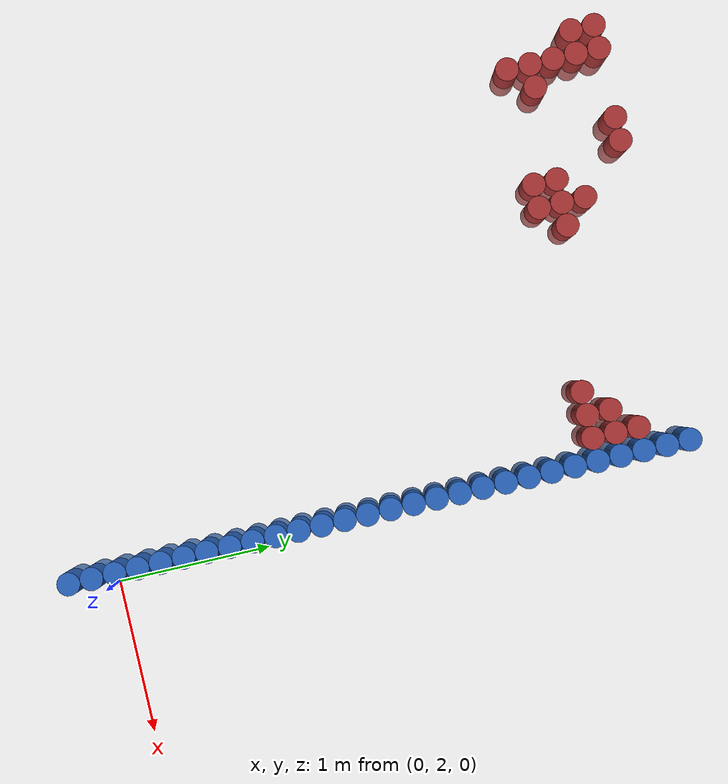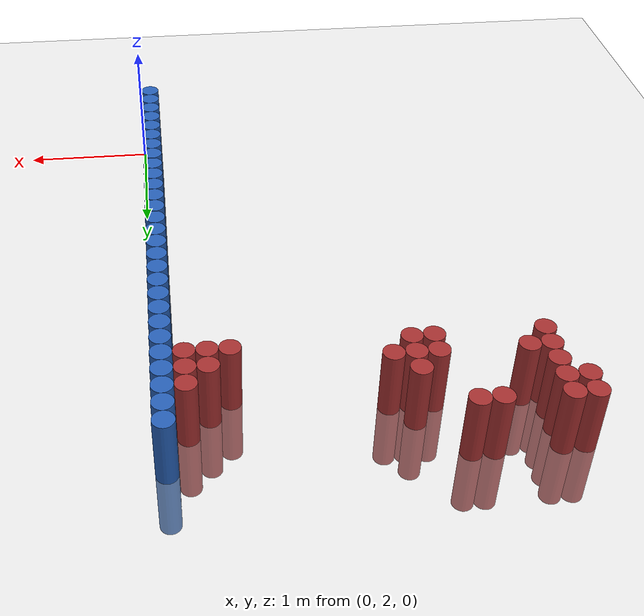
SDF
<sdf version="1.6">
 <world name="default">
  <model name="ground_plane">
   <static>1</static>
   <link name="link">
    <collision name="collision">
     <geometry><plane><normal>0 0 1</normal><size>100 100</size></plane></geometry>
     <surface><friction><ode><mu>100</mu><mu2>50</mu2></ode></friction></surface>
    </collision>
    <visual name="visual">
     <cast_shadows>0</cast_shadows>
     <geometry><plane><normal>0 0 1</normal><size>100 100</size></plane></geometry>
     <material>
      <script><uri>file://media/materials/scripts/gazebo.material</uri><name>Gazebo/Grey</name></script>
     </material>
    </visual>
   </link>
  </model>
  <model name="unit_cylinder_50">
   <static>1</static>
   <pose>-0.075000 1.725000 0.000000 0.000000 0.000000 0.000000</pose>
   <link name="link">
    <inertial>
     <mass>1</mass>
     <inertia><ixx>0.145833</ixx><ixy>0</ixy><ixz>0</ixz><iyy>0.145833</iyy><iyz>0</iyz><izz>0.125</izz></inertia>
    </inertial>
    <collision name="collision">
     <geometry><cylinder><radius>0.075000</radius><length>1</length></cylinder></geometry>
    </collision>
    <visual name="visual">
     <geometry><cylinder><radius>0.075000</radius><length>1</length></cylinder></geometry>
     <material>
      <ambient>0.152000 0.379000 0.720000 1</ambient>
      <diffuse>0.152000 0.379000 0.720000 1</diffuse>
     </material>
     <material>
      <script><name>Gazebo/Grey</name><uri>file://media/materials/scripts/gazebo.material</uri></script>
     </material>
    </visual>
   </link>
  </model>
  <model name="unit_cylinder_52">
   <static>1</static>
   <pose>-0.075000 1.875000 0.000000 0.000000 0.000000 0.000000</pose>
   <link name="link">
    <inertial>
     <mass>1</mass>
     <inertia><ixx>0.145833</ixx><ixy>0</ixy><ixz>0</ixz><iyy>0.145833</iyy><iyz>0</iyz><izz>0.125</izz></inertia>
    </inertial>
    <collision name="collision">
     <geometry><cylinder><radius>0.075000</radius><length>1</length></cylinder></geometry>
    </collision>
    <visual name="visual">
     <geometry><cylinder><radius>0.075000</radius><length>1</length></cylinder></geometry>
     <material>
      <ambient>0.152000 0.379000 0.720000 1</ambient>
      <diffuse>0.152000 0.379000 0.720000 1</diffuse>
     </material>
     <material>
      <script><name>Gazebo/Grey</name><uri>file://media/materials/scripts/gazebo.material</uri></script>
     </material>
    </visual>
   </link>
  </model>
  <model name="unit_cylinder_54">
   <static>1</static>
   <pose>-0.075000 2.025000 0.000000 0.000000 0.000000 0.000000</pose>
   <link name="link">
    <inertial>
     <mass>1</mass>
     <inertia><ixx>0.145833</ixx><ixy>0</ixy><ixz>0</ixz><iyy>0.145833</iyy><iyz>0</iyz><izz>0.125</izz></inertia>
    </inertial>
    <collision name="collision">
     <geometry><cylinder><radius>0.075000</radius><length>1</length></cylinder></geometry>
    </collision>
    <visual name="visual">
     <geometry><cylinder><radius>0.075000</radius><length>1</length></cylinder></geometry>
     <material>
      <ambient>0.152000 0.379000 0.720000 1</ambient>
      <diffuse>0.152000 0.379000 0.720000 1</diffuse>
     </material>
     <material>
      <script><name>Gazebo/Grey</name><uri>file://media/materials/scripts/gazebo.material</uri></script>
     </material>
    </visual>
   </link>
  </model>
  <model name="unit_cylinder_56">
   <static>1</static>
   <pose>-0.075000 2.175000 0.000000 0.000000 0.000000 0.000000</pose>
   <link name="link">
    <inertial>
     <mass>1</mass>
     <inertia><ixx>0.145833</ixx><ixy>0</ixy><ixz>0</ixz><iyy>0.145833</iyy><iyz>0</iyz><izz>0.125</izz></inertia>
    </inertial>
    <collision name="collision">
     <geometry><cylinder><radius>0.075000</radius><length>1</length></cylinder></geometry>
    </collision>
    <visual name="visual">
     <geometry><cylinder><radius>0.075000</radius><length>1</length></cylinder></geometry>
     <material>
      <ambient>0.152000 0.379000 0.720000 1</ambient>
      <diffuse>0.152000 0.379000 0.720000 1</diffuse>
     </material>
     <material>
      <script><name>Gazebo/Grey</name><uri>file://media/materials/scripts/gazebo.material</uri></script>
     </material>
    </visual>
   </link>
  </model>
  <model name="unit_cylinder_58">
   <static>1</static>
   <pose>-0.075000 2.325000 0.000000 0.000000 0.000000 0.000000</pose>
   <link name="link">
    <inertial>
     <mass>1</mass>
     <inertia><ixx>0.145833</ixx><ixy>0</ixy><ixz>0</ixz><iyy>0.145833</iyy><iyz>0</iyz><izz>0.125</izz></inertia>
    </inertial>
    <collision name="collision">
     <geometry><cylinder><radius>0.075000</radius><length>1</length></cylinder></geometry>
    </collision>
    <visual name="visual">
     <geometry><cylinder><radius>0.075000</radius><length>1</length></cylinder></geometry>
     <material>
      <ambient>0.152000 0.379000 0.720000 1</ambient>
      <diffuse>0.152000 0.379000 0.720000 1</diffuse>
     </material>
     <material>
      <script><name>Gazebo/Grey</name><uri>file://media/materials/scripts/gazebo.material</uri></script>
     </material>
    </visual>
   </link>
  </model>
  <model name="unit_cylinder_60">
   <static>1</static>
   <pose>-0.075000 2.475000 0.000000 0.000000 0.000000 0.000000</pose>
   <link name="link">
    <inertial>
     <mass>1</mass>
     <inertia><ixx>0.145833</ixx><ixy>0</ixy><ixz>0</ixz><iyy>0.145833</iyy><iyz>0</iyz><izz>0.125</izz></inertia>
    </inertial>
    <collision name="collision">
     <geometry><cylinder><radius>0.075000</radius><length>1</length></cylinder></geometry>
    </collision>
    <visual name="visual">
     <geometry><cylinder><radius>0.075000</radius><length>1</length></cylinder></geometry>
     <material>
      <ambient>0.152000 0.379000 0.720000 1</ambient>
      <diffuse>0.152000 0.379000 0.720000 1</diffuse>
     </material>
     <material>
      <script><name>Gazebo/Grey</name><uri>file://media/materials/scripts/gazebo.material</uri></script>
     </material>
    </visual>
   </link>
  </model>
  <model name="unit_cylinder_62">
   <static>1</static>
   <pose>-0.075000 2.625000 0.000000 0.000000 0.000000 0.000000</pose>
   <link name="link">
    <inertial>
     <mass>1</mass>
     <inertia><ixx>0.145833</ixx><ixy>0</ixy><ixz>0</ixz><iyy>0.145833</iyy><iyz>0</iyz><izz>0.125</izz></inertia>
    </inertial>
    <collision name="collision">
     <geometry><cylinder><radius>0.075000</radius><length>1</length></cylinder></geometry>
    </collision>
    <visual name="visual">
     <geometry><cylinder><radius>0.075000</radius><length>1</length></cylinder></geometry>
     <material>
      <ambient>0.152000 0.379000 0.720000 1</ambient>
      <diffuse>0.152000 0.379000 0.720000 1</diffuse>
     </material>
     <material>
      <script><name>Gazebo/Grey</name><uri>file://media/materials/scripts/gazebo.material</uri></script>
     </material>
    </visual>
   </link>
  </model>
  <model name="unit_cylinder_64">
   <static>1</static>
   <pose>-0.075000 2.775000 0.000000 0.000000 0.000000 0.000000</pose>
   <link name="link">
    <inertial>
     <mass>1</mass>
     <inertia><ixx>0.145833</ixx><ixy>0</ixy><ixz>0</ixz><iyy>0.145833</iyy><iyz>0</iyz><izz>0.125</izz></inertia>
    </inertial>
    <collision name="collision">
     <geometry><cylinder><radius>0.075000</radius><length>1</length></cylinder></geometry>
    </collision>
    <visual name="visual">
     <geometry><cylinder><radius>0.075000</radius><length>1</length></cylinder></geometry>
     <material>
      <ambient>0.152000 0.379000 0.720000 1</ambient>
      <diffuse>0.152000 0.379000 0.720000 1</diffuse>
     </material>
     <material>
      <script><name>Gazebo/Grey</name><uri>file://media/materials/scripts/gazebo.material</uri></script>
     </material>
    </visual>
   </link>
  </model>
  <model name="unit_cylinder_66">
   <static>1</static>
   <pose>-0.075000 2.925000 0.000000 0.000000 0.000000 0.000000</pose>
   <link name="link">
    <inertial>
     <mass>1</mass>
     <inertia><ixx>0.145833</ixx><ixy>0</ixy><ixz>0</ixz><iyy>0.145833</iyy><iyz>0</iyz><izz>0.125</izz></inertia>
    </inertial>
    <collision name="collision">
     <geometry><cylinder><radius>0.075000</radius><length>1</length></cylinder></geometry>
    </collision>
    <visual name="visual">
     <geometry><cylinder><radius>0.075000</radius><length>1</length></cylinder></geometry>
     <material>
      <ambient>0.152000 0.379000 0.720000 1</ambient>
      <diffuse>0.152000 0.379000 0.720000 1</diffuse>
     </material>
     <material>
      <script><name>Gazebo/Grey</name><uri>file://media/materials/scripts/gazebo.material</uri></script>
     </material>
    </visual>
   </link>
  </model>
  <model name="unit_cylinder_68">
   <static>1</static>
   <pose>-0.075000 3.075000 0.000000 0.000000 0.000000 0.000000</pose>
   <link name="link">
    <inertial>
     <mass>1</mass>
     <inertia><ixx>0.145833</ixx><ixy>0</ixy><ixz>0</ixz><iyy>0.145833</iyy><iyz>0</iyz><izz>0.125</izz></inertia>
    </inertial>
    <collision name="collision">
     <geometry><cylinder><radius>0.075000</radius><length>1</length></cylinder></geometry>
    </collision>
    <visual name="visual">
     <geometry><cylinder><radius>0.075000</radius><length>1</length></cylinder></geometry>
     <material>
      <ambient>0.152000 0.379000 0.720000 1</ambient>
      <diffuse>0.152000 0.379000 0.720000 1</diffuse>
     </material>
     <material>
      <script><name>Gazebo/Grey</name><uri>file://media/materials/scripts/gazebo.material</uri></script>
     </material>
    </visual>
   </link>
  </model>
  <model name="unit_cylinder_70">
   <static>1</static>
   <pose>-0.075000 3.225000 0.000000 0.000000 0.000000 0.000000</pose>
   <link name="link">
    <inertial>
     <mass>1</mass>
     <inertia><ixx>0.145833</ixx><ixy>0</ixy><ixz>0</ixz><iyy>0.145833</iyy><iyz>0</iyz><izz>0.125</izz></inertia>
    </inertial>
    <collision name="collision">
     <geometry><cylinder><radius>0.075000</radius><length>1</length></cylinder></geometry>
    </collision>
    <visual name="visual">
     <geometry><cylinder><radius>0.075000</radius><length>1</length></cylinder></geometry>
     <material>
      <ambient>0.152000 0.379000 0.720000 1</ambient>
      <diffuse>0.152000 0.379000 0.720000 1</diffuse>
     </material>
     <material>
      <script><name>Gazebo/Grey</name><uri>file://media/materials/scripts/gazebo.material</uri></script>
     </material>
    </visual>
   </link>
  </model>
  <model name="unit_cylinder_72">
   <static>1</static>
   <pose>-0.075000 3.375000 0.000000 0.000000 0.000000 0.000000</pose>
   <link name="link">
    <inertial>
     <mass>1</mass>
     <inertia><ixx>0.145833</ixx><ixy>0</ixy><ixz>0</ixz><iyy>0.145833</iyy><iyz>0</iyz><izz>0.125</izz></inertia>
    </inertial>
    <collision name="collision">
     <geometry><cylinder><radius>0.075000</radius><length>1</length></cylinder></geometry>
    </collision>
    <visual name="visual">
     <geometry><cylinder><radius>0.075000</radius><length>1</length></cylinder></geometry>
     <material>
      <ambient>0.152000 0.379000 0.720000 1</ambient>
      <diffuse>0.152000 0.379000 0.720000 1</diffuse>
     </material>
     <material>
      <script><name>Gazebo/Grey</name><uri>file://media/materials/scripts/gazebo.material</uri></script>
     </material>
    </visual>
   </link>
  </model>
  <model name="unit_cylinder_74">
   <static>1</static>
   <pose>-0.075000 3.525000 0.000000 0.000000 0.000000 0.000000</pose>
   <link name="link">
    <inertial>
     <mass>1</mass>
     <inertia><ixx>0.145833</ixx><ixy>0</ixy><ixz>0</ixz><iyy>0.145833</iyy><iyz>0</iyz><izz>0.125</izz></inertia>
    </inertial>
    <collision name="collision">
     <geometry><cylinder><radius>0.075000</radius><length>1</length></cylinder></geometry>
    </collision>
    <visual name="visual">
     <geometry><cylinder><radius>0.075000</radius><length>1</length></cylinder></geometry>
     <material>
      <ambient>0.152000 0.379000 0.720000 1</ambient>
      <diffuse>0.152000 0.379000 0.720000 1</diffuse>
     </material>
     <material>
      <script><name>Gazebo/Grey</name><uri>file://media/materials/scripts/gazebo.material</uri></script>
     </material>
    </visual>
   </link>
  </model>
  <model name="unit_cylinder_76">
   <static>1</static>
   <pose>-0.075000 3.675000 0.000000 0.000000 0.000000 0.000000</pose>
   <link name="link">
    <inertial>
     <mass>1</mass>
     <inertia><ixx>0.145833</ixx><ixy>0</ixy><ixz>0</ixz><iyy>0.145833</iyy><iyz>0</iyz><izz>0.125</izz></inertia>
    </inertial>
    <collision name="collision">
     <geometry><cylinder><radius>0.075000</radius><length>1</length></cylinder></geometry>
    </collision>
    <visual name="visual">
     <geometry><cylinder><radius>0.075000</radius><length>1</length></cylinder></geometry>
     <material>
      <ambient>0.152000 0.379000 0.720000 1</ambient>
      <diffuse>0.152000 0.379000 0.720000 1</diffuse>
     </material>
     <material>
      <script><name>Gazebo/Grey</name><uri>file://media/materials/scripts/gazebo.material</uri></script>
     </material>
    </visual>
   </link>
  </model>
  <model name="unit_cylinder_78">
   <static>1</static>
   <pose>-0.075000 3.825000 0.000000 0.000000 0.000000 0.000000</pose>
   <link name="link">
    <inertial>
     <mass>1</mass>
     <inertia><ixx>0.145833</ixx><ixy>0</ixy><ixz>0</ixz><iyy>0.145833</iyy><iyz>0</iyz><izz>0.125</izz></inertia>
    </inertial>
    <collision name="collision">
     <geometry><cylinder><radius>0.075000</radius><length>1</length></cylinder></geometry>
    </collision>
    <visual name="visual">
     <geometry><cylinder><radius>0.075000</radius><length>1</length></cylinder></geometry>
     <material>
      <ambient>0.152000 0.379000 0.720000 1</ambient>
      <diffuse>0.152000 0.379000 0.720000 1</diffuse>
     </material>
     <material>
      <script><name>Gazebo/Grey</name><uri>file://media/materials/scripts/gazebo.material</uri></script>
     </material>
    </visual>
   </link>
  </model>
  <model name="unit_cylinder_80">
   <static>1</static>
   <pose>-0.075000 3.975000 0.000000 0.000000 0.000000 0.000000</pose>
   <link name="link">
    <inertial>
     <mass>1</mass>
     <inertia><ixx>0.145833</ixx><ixy>0</ixy><ixz>0</ixz><iyy>0.145833</iyy><iyz>0</iyz><izz>0.125</izz></inertia>
    </inertial>
    <collision name="collision">
     <geometry><cylinder><radius>0.075000</radius><length>1</length></cylinder></geometry>
    </collision>
    <visual name="visual">
     <geometry><cylinder><radius>0.075000</radius><length>1</length></cylinder></geometry>
     <material>
      <ambient>0.152000 0.379000 0.720000 1</ambient>
      <diffuse>0.152000 0.379000 0.720000 1</diffuse>
     </material>
     <material>
      <script><name>Gazebo/Grey</name><uri>file://media/materials/scripts/gazebo.material</uri></script>
     </material>
    </visual>
   </link>
  </model>
  <model name="unit_cylinder_82">
   <static>1</static>
   <pose>-0.075000 4.125000 0.000000 0.000000 0.000000 0.000000</pose>
   <link name="link">
    <inertial>
     <mass>1</mass>
     <inertia><ixx>0.145833</ixx><ixy>0</ixy><ixz>0</ixz><iyy>0.145833</iyy><iyz>0</iyz><izz>0.125</izz></inertia>
    </inertial>
    <collision name="collision">
     <geometry><cylinder><radius>0.075000</radius><length>1</length></cylinder></geometry>
    </collision>
    <visual name="visual">
     <geometry><cylinder><radius>0.075000</radius><length>1</length></cylinder></geometry>
     <material>
      <ambient>0.152000 0.379000 0.720000 1</ambient>
      <diffuse>0.152000 0.379000 0.720000 1</diffuse>
     </material>
     <material>
      <script><name>Gazebo/Grey</name><uri>file://media/materials/scripts/gazebo.material</uri></script>
     </material>
    </visual>
   </link>
  </model>
  <model name="unit_cylinder_84">
   <static>1</static>
   <pose>-0.075000 4.275000 0.000000 0.000000 0.000000 0.000000</pose>
   <link name="link">
    <inertial>
     <mass>1</mass>
     <inertia><ixx>0.145833</ixx><ixy>0</ixy><ixz>0</ixz><iyy>0.145833</iyy><iyz>0</iyz><izz>0.125</izz></inertia>
    </inertial>
    <collision name="collision">
     <geometry><cylinder><radius>0.075000</radius><length>1</length></cylinder></geometry>
    </collision>
    <visual name="visual">
     <geometry><cylinder><radius>0.075000</radius><length>1</length></cylinder></geometry>
     <material>
      <ambient>0.152000 0.379000 0.720000 1</ambient>
      <diffuse>0.152000 0.379000 0.720000 1</diffuse>
     </material>
     <material>
      <script><name>Gazebo/Grey</name><uri>file://media/materials/scripts/gazebo.material</uri></script>
     </material>
    </visual>
   </link>
  </model>
  <model name="unit_cylinder_86">
   <static>1</static>
   <pose>-0.075000 4.425000 0.000000 0.000000 0.000000 0.000000</pose>
   <link name="link">
    <inertial>
     <mass>1</mass>
     <inertia><ixx>0.145833</ixx><ixy>0</ixy><ixz>0</ixz><iyy>0.145833</iyy><iyz>0</iyz><izz>0.125</izz></inertia>
    </inertial>
    <collision name="collision">
     <geometry><cylinder><radius>0.075000</radius><length>1</length></cylinder></geometry>
    </collision>
    <visual name="visual">
     <geometry><cylinder><radius>0.075000</radius><length>1</length></cylinder></geometry>
     <material>
      <ambient>0.152000 0.379000 0.720000 1</ambient>
      <diffuse>0.152000 0.379000 0.720000 1</diffuse>
     </material>
     <material>
      <script><name>Gazebo/Grey</name><uri>file://media/materials/scripts/gazebo.material</uri></script>
     </material>
    </visual>
   </link>
  </model>
  <model name="unit_cylinder_88">
   <static>1</static>
   <pose>-0.075000 4.575000 0.000000 0.000000 0.000000 0.000000</pose>
   <link name="link">
    <inertial>
     <mass>1</mass>
     <inertia><ixx>0.145833</ixx><ixy>0</ixy><ixz>0</ixz><iyy>0.145833</iyy><iyz>0</iyz><izz>0.125</izz></inertia>
    </inertial>
    <collision name="collision">
     <geometry><cylinder><radius>0.075000</radius><length>1</length></cylinder></geometry>
    </collision>
    <visual name="visual">
     <geometry><cylinder><radius>0.075000</radius><length>1</length></cylinder></geometry>
     <material>
      <ambient>0.152000 0.379000 0.720000 1</ambient>
      <diffuse>0.152000 0.379000 0.720000 1</diffuse>
     </material>
     <material>
      <script><name>Gazebo/Grey</name><uri>file://media/materials/scripts/gazebo.material</uri></script>
     </material>
    </visual>
   </link>
  </model>
  <model name="unit_cylinder_90">
   <static>1</static>
   <pose>-0.075000 4.725000 0.000000 0.000000 0.000000 0.000000</pose>
   <link name="link">
    <inertial>
     <mass>1</mass>
     <inertia><ixx>0.145833</ixx><ixy>0</ixy><ixz>0</ixz><iyy>0.145833</iyy><iyz>0</iyz><izz>0.125</izz></inertia>
    </inertial>
    <collision name="collision">
     <geometry><cylinder><radius>0.075000</radius><length>1</length></cylinder></geometry>
    </collision>
    <visual name="visual">
     <geometry><cylinder><radius>0.075000</radius><length>1</length></cylinder></geometry>
     <material>
      <ambient>0.152000 0.379000 0.720000 1</ambient>
      <diffuse>0.152000 0.379000 0.720000 1</diffuse>
     </material>
     <material>
      <script><name>Gazebo/Grey</name><uri>file://media/materials/scripts/gazebo.material</uri></script>
     </material>
    </visual>
   </link>
  </model>
  <model name="unit_cylinder_92">
   <static>1</static>
   <pose>-0.075000 4.875000 0.000000 0.000000 0.000000 0.000000</pose>
   <link name="link">
    <inertial>
     <mass>1</mass>
     <inertia><ixx>0.145833</ixx><ixy>0</ixy><ixz>0</ixz><iyy>0.145833</iyy><iyz>0</iyz><izz>0.125</izz></inertia>
    </inertial>
    <collision name="collision">
     <geometry><cylinder><radius>0.075000</radius><length>1</length></cylinder></geometry>
    </collision>
    <visual name="visual">
     <geometry><cylinder><radius>0.075000</radius><length>1</length></cylinder></geometry>
     <material>
      <ambient>0.152000 0.379000 0.720000 1</ambient>
      <diffuse>0.152000 0.379000 0.720000 1</diffuse>
     </material>
     <material>
      <script><name>Gazebo/Grey</name><uri>file://media/materials/scripts/gazebo.material</uri></script>
     </material>
    </visual>
   </link>
  </model>
  <model name="unit_cylinder_94">
   <static>1</static>
   <pose>-0.075000 5.025000 0.000000 0.000000 0.000000 0.000000</pose>
   <link name="link">
    <inertial>
     <mass>1</mass>
     <inertia><ixx>0.145833</ixx><ixy>0</ixy><ixz>0</ixz><iyy>0.145833</iyy><iyz>0</iyz><izz>0.125</izz></inertia>
    </inertial>
    <collision name="collision">
     <geometry><cylinder><radius>0.075000</radius><length>1</length></cylinder></geometry>
    </collision>
    <visual name="visual">
     <geometry><cylinder><radius>0.075000</radius><length>1</length></cylinder></geometry>
     <material>
      <ambient>0.152000 0.379000 0.720000 1</ambient>
      <diffuse>0.152000 0.379000 0.720000 1</diffuse>
     </material>
     <material>
      <script><name>Gazebo/Grey</name><uri>file://media/materials/scripts/gazebo.material</uri></script>
     </material>
    </visual>
   </link>
  </model>
  <model name="unit_cylinder_211">
   <static>1</static>
   <pose>-2.775000 5.625000 0.000000 0.000000 0.000000 0.000000</pose>
   <link name="link">
    <inertial>
     <mass>1</mass>
     <inertia><ixx>0.145833</ixx><ixy>0</ixy><ixz>0</ixz><iyy>0.145833</iyy><iyz>0</iyz><izz>0.125</izz></inertia>
    </inertial>
    <collision name="collision">
     <geometry><cylinder><radius>0.075000</radius><length>1</length></cylinder></geometry>
    </collision>
    <visual name="visual">
     <geometry><cylinder><radius>0.075000</radius><length>1</length></cylinder></geometry>
     <material>
      <ambient>0.648000 0.192000 0.192000 1</ambient>
      <diffuse>0.648000 0.192000 0.192000 1</diffuse>
     </material>
     <material>
      <script><name>Gazebo/Grey</name><uri>file://media/materials/scripts/gazebo.material</uri></script>
     </material>
    </visual>
   </link>
  </model>
  <model name="unit_cylinder_212">
   <static>1</static>
   <pose>-2.775000 5.775000 0.000000 0.000000 0.000000 0.000000</pose>
   <link name="link">
    <inertial>
     <mass>1</mass>
     <inertia><ixx>0.145833</ixx><ixy>0</ixy><ixz>0</ixz><iyy>0.145833</iyy><iyz>0</iyz><izz>0.125</izz></inertia>
    </inertial>
    <collision name="collision">
     <geometry><cylinder><radius>0.075000</radius><length>1</length></cylinder></geometry>
    </collision>
    <visual name="visual">
     <geometry><cylinder><radius>0.075000</radius><length>1</length></cylinder></geometry>
     <material>
      <ambient>0.648000 0.192000 0.192000 1</ambient>
      <diffuse>0.648000 0.192000 0.192000 1</diffuse>
     </material>
     <material>
      <script><name>Gazebo/Grey</name><uri>file://media/materials/scripts/gazebo.material</uri></script>
     </material>
    </visual>
   </link>
  </model>
  <model name="unit_cylinder_219">
   <static>1</static>
   <pose>-2.625000 5.175000 0.000000 0.000000 0.000000 0.000000</pose>
   <link name="link">
    <inertial>
     <mass>1</mass>
     <inertia><ixx>0.145833</ixx><ixy>0</ixy><ixz>0</ixz><iyy>0.145833</iyy><iyz>0</iyz><izz>0.125</izz></inertia>
    </inertial>
    <collision name="collision">
     <geometry><cylinder><radius>0.075000</radius><length>1</length></cylinder></geometry>
    </collision>
    <visual name="visual">
     <geometry><cylinder><radius>0.075000</radius><length>1</length></cylinder></geometry>
     <material>
      <ambient>0.648000 0.192000 0.192000 1</ambient>
      <diffuse>0.648000 0.192000 0.192000 1</diffuse>
     </material>
     <material>
      <script><name>Gazebo/Grey</name><uri>file://media/materials/scripts/gazebo.material</uri></script>
     </material>
    </visual>
   </link>
  </model>
  <model name="unit_cylinder_220">
   <static>1</static>
   <pose>-2.625000 5.325000 0.000000 0.000000 0.000000 0.000000</pose>
   <link name="link">
    <inertial>
     <mass>1</mass>
     <inertia><ixx>0.145833</ixx><ixy>0</ixy><ixz>0</ixz><iyy>0.145833</iyy><iyz>0</iyz><izz>0.125</izz></inertia>
    </inertial>
    <collision name="collision">
     <geometry><cylinder><radius>0.075000</radius><length>1</length></cylinder></geometry>
    </collision>
    <visual name="visual">
     <geometry><cylinder><radius>0.075000</radius><length>1</length></cylinder></geometry>
     <material>
      <ambient>0.648000 0.192000 0.192000 1</ambient>
      <diffuse>0.648000 0.192000 0.192000 1</diffuse>
     </material>
     <material>
      <script><name>Gazebo/Grey</name><uri>file://media/materials/scripts/gazebo.material</uri></script>
     </material>
    </visual>
   </link>
  </model>
  <model name="unit_cylinder_221">
   <static>1</static>
   <pose>-2.625000 5.475000 0.000000 0.000000 0.000000 0.000000</pose>
   <link name="link">
    <inertial>
     <mass>1</mass>
     <inertia><ixx>0.145833</ixx><ixy>0</ixy><ixz>0</ixz><iyy>0.145833</iyy><iyz>0</iyz><izz>0.125</izz></inertia>
    </inertial>
    <collision name="collision">
     <geometry><cylinder><radius>0.075000</radius><length>1</length></cylinder></geometry>
    </collision>
    <visual name="visual">
     <geometry><cylinder><radius>0.075000</radius><length>1</length></cylinder></geometry>
     <material>
      <ambient>0.648000 0.192000 0.192000 1</ambient>
      <diffuse>0.648000 0.192000 0.192000 1</diffuse>
     </material>
     <material>
      <script><name>Gazebo/Grey</name><uri>file://media/materials/scripts/gazebo.material</uri></script>
     </material>
    </visual>
   </link>
  </model>
  <model name="unit_cylinder_222">
   <static>1</static>
   <pose>-2.625000 5.625000 0.000000 0.000000 0.000000 0.000000</pose>
   <link name="link">
    <inertial>
     <mass>1</mass>
     <inertia><ixx>0.145833</ixx><ixy>0</ixy><ixz>0</ixz><iyy>0.145833</iyy><iyz>0</iyz><izz>0.125</izz></inertia>
    </inertial>
    <collision name="collision">
     <geometry><cylinder><radius>0.075000</radius><length>1</length></cylinder></geometry>
    </collision>
    <visual name="visual">
     <geometry><cylinder><radius>0.075000</radius><length>1</length></cylinder></geometry>
     <material>
      <ambient>0.648000 0.192000 0.192000 1</ambient>
      <diffuse>0.648000 0.192000 0.192000 1</diffuse>
     </material>
     <material>
      <script><name>Gazebo/Grey</name><uri>file://media/materials/scripts/gazebo.material</uri></script>
     </material>
    </visual>
   </link>
  </model>
  <model name="unit_cylinder_223">
   <static>1</static>
   <pose>-2.625000 5.775000 0.000000 0.000000 0.000000 0.000000</pose>
   <link name="link">
    <inertial>
     <mass>1</mass>
     <inertia><ixx>0.145833</ixx><ixy>0</ixy><ixz>0</ixz><iyy>0.145833</iyy><iyz>0</iyz><izz>0.125</izz></inertia>
    </inertial>
    <collision name="collision">
     <geometry><cylinder><radius>0.075000</radius><length>1</length></cylinder></geometry>
    </collision>
    <visual name="visual">
     <geometry><cylinder><radius>0.075000</radius><length>1</length></cylinder></geometry>
     <material>
      <ambient>0.648000 0.192000 0.192000 1</ambient>
      <diffuse>0.648000 0.192000 0.192000 1</diffuse>
     </material>
     <material>
      <script><name>Gazebo/Grey</name><uri>file://media/materials/scripts/gazebo.material</uri></script>
     </material>
    </visual>
   </link>
  </model>
  <model name="unit_cylinder_229">
   <static>1</static>
   <pose>-2.475000 5.325000 0.000000 0.000000 0.000000 0.000000</pose>
   <link name="link">
    <inertial>
     <mass>1</mass>
     <inertia><ixx>0.145833</ixx><ixy>0</ixy><ixz>0</ixz><iyy>0.145833</iyy><iyz>0</iyz><izz>0.125</izz></inertia>
    </inertial>
    <collision name="collision">
     <geometry><cylinder><radius>0.075000</radius><length>1</length></cylinder></geometry>
    </collision>
    <visual name="visual">
     <geometry><cylinder><radius>0.075000</radius><length>1</length></cylinder></geometry>
     <material>
      <ambient>0.648000 0.192000 0.192000 1</ambient>
      <diffuse>0.648000 0.192000 0.192000 1</diffuse>
     </material>
     <material>
      <script><name>Gazebo/Grey</name><uri>file://media/materials/scripts/gazebo.material</uri></script>
     </material>
    </visual>
   </link>
  </model>
  <model name="unit_cylinder_244">
   <static>1</static>
   <pose>-2.175000 5.775000 0.000000 0.000000 0.000000 0.000000</pose>
   <link name="link">
    <inertial>
     <mass>1</mass>
     <inertia><ixx>0.145833</ixx><ixy>0</ixy><ixz>0</ixz><iyy>0.145833</iyy><iyz>0</iyz><izz>0.125</izz></inertia>
    </inertial>
    <collision name="collision">
     <geometry><cylinder><radius>0.075000</radius><length>1</length></cylinder></geometry>
    </collision>
    <visual name="visual">
     <geometry><cylinder><radius>0.075000</radius><length>1</length></cylinder></geometry>
     <material>
      <ambient>0.648000 0.192000 0.192000 1</ambient>
      <diffuse>0.648000 0.192000 0.192000 1</diffuse>
     </material>
     <material>
      <script><name>Gazebo/Grey</name><uri>file://media/materials/scripts/gazebo.material</uri></script>
     </material>
    </visual>
   </link>
  </model>
  <model name="unit_cylinder_252">
   <static>1</static>
   <pose>-2.025000 5.775000 0.000000 0.000000 0.000000 0.000000</pose>
   <link name="link">
    <inertial>
     <mass>1</mass>
     <inertia><ixx>0.145833</ixx><ixy>0</ixy><ixz>0</ixz><iyy>0.145833</iyy><iyz>0</iyz><izz>0.125</izz></inertia>
    </inertial>
    <collision name="collision">
     <geometry><cylinder><radius>0.075000</radius><length>1</length></cylinder></geometry>
    </collision>
    <visual name="visual">
     <geometry><cylinder><radius>0.075000</radius><length>1</length></cylinder></geometry>
     <material>
      <ambient>0.648000 0.192000 0.192000 1</ambient>
      <diffuse>0.648000 0.192000 0.192000 1</diffuse>
     </material>
     <material>
      <script><name>Gazebo/Grey</name><uri>file://media/materials/scripts/gazebo.material</uri></script>
     </material>
    </visual>
   </link>
  </model>
  <model name="unit_cylinder_260">
   <static>1</static>
   <pose>-1.875000 5.175000 0.000000 0.000000 0.000000 0.000000</pose>
   <link name="link">
    <inertial>
     <mass>1</mass>
     <inertia><ixx>0.145833</ixx><ixy>0</ixy><ixz>0</ixz><iyy>0.145833</iyy><iyz>0</iyz><izz>0.125</izz></inertia>
    </inertial>
    <collision name="collision">
     <geometry><cylinder><radius>0.075000</radius><length>1</length></cylinder></geometry>
    </collision>
    <visual name="visual">
     <geometry><cylinder><radius>0.075000</radius><length>1</length></cylinder></geometry>
     <material>
      <ambient>0.648000 0.192000 0.192000 1</ambient>
      <diffuse>0.648000 0.192000 0.192000 1</diffuse>
     </material>
     <material>
      <script><name>Gazebo/Grey</name><uri>file://media/materials/scripts/gazebo.material</uri></script>
     </material>
    </visual>
   </link>
  </model>
  <model name="unit_cylinder_261">
   <static>1</static>
   <pose>-1.875000 5.325000 0.000000 0.000000 0.000000 0.000000</pose>
   <link name="link">
    <inertial>
     <mass>1</mass>
     <inertia><ixx>0.145833</ixx><ixy>0</ixy><ixz>0</ixz><iyy>0.145833</iyy><iyz>0</iyz><izz>0.125</izz></inertia>
    </inertial>
    <collision name="collision">
     <geometry><cylinder><radius>0.075000</radius><length>1</length></cylinder></geometry>
    </collision>
    <visual name="visual">
     <geometry><cylinder><radius>0.075000</radius><length>1</length></cylinder></geometry>
     <material>
      <ambient>0.648000 0.192000 0.192000 1</ambient>
      <diffuse>0.648000 0.192000 0.192000 1</diffuse>
     </material>
     <material>
      <script><name>Gazebo/Grey</name><uri>file://media/materials/scripts/gazebo.material</uri></script>
     </material>
    </visual>
   </link>
  </model>
  <model name="unit_cylinder_269">
   <static>1</static>
   <pose>-1.725000 5.175000 0.000000 0.000000 0.000000 0.000000</pose>
   <link name="link">
    <inertial>
     <mass>1</mass>
     <inertia><ixx>0.145833</ixx><ixy>0</ixy><ixz>0</ixz><iyy>0.145833</iyy><iyz>0</iyz><izz>0.125</izz></inertia>
    </inertial>
    <collision name="collision">
     <geometry><cylinder><radius>0.075000</radius><length>1</length></cylinder></geometry>
    </collision>
    <visual name="visual">
     <geometry><cylinder><radius>0.075000</radius><length>1</length></cylinder></geometry>
     <material>
      <ambient>0.648000 0.192000 0.192000 1</ambient>
      <diffuse>0.648000 0.192000 0.192000 1</diffuse>
     </material>
     <material>
      <script><name>Gazebo/Grey</name><uri>file://media/materials/scripts/gazebo.material</uri></script>
     </material>
    </visual>
   </link>
  </model>
  <model name="unit_cylinder_270">
   <static>1</static>
   <pose>-1.725000 5.325000 0.000000 0.000000 0.000000 0.000000</pose>
   <link name="link">
    <inertial>
     <mass>1</mass>
     <inertia><ixx>0.145833</ixx><ixy>0</ixy><ixz>0</ixz><iyy>0.145833</iyy><iyz>0</iyz><izz>0.125</izz></inertia>
    </inertial>
    <collision name="collision">
     <geometry><cylinder><radius>0.075000</radius><length>1</length></cylinder></geometry>
    </collision>
    <visual name="visual">
     <geometry><cylinder><radius>0.075000</radius><length>1</length></cylinder></geometry>
     <material>
      <ambient>0.648000 0.192000 0.192000 1</ambient>
      <diffuse>0.648000 0.192000 0.192000 1</diffuse>
     </material>
     <material>
      <script><name>Gazebo/Grey</name><uri>file://media/materials/scripts/gazebo.material</uri></script>
     </material>
    </visual>
   </link>
  </model>
  <model name="unit_cylinder_271">
   <static>1</static>
   <pose>-1.725000 5.475000 0.000000 0.000000 0.000000 0.000000</pose>
   <link name="link">
    <inertial>
     <mass>1</mass>
     <inertia><ixx>0.145833</ixx><ixy>0</ixy><ixz>0</ixz><iyy>0.145833</iyy><iyz>0</iyz><izz>0.125</izz></inertia>
    </inertial>
    <collision name="collision">
     <geometry><cylinder><radius>0.075000</radius><length>1</length></cylinder></geometry>
    </collision>
    <visual name="visual">
     <geometry><cylinder><radius>0.075000</radius><length>1</length></cylinder></geometry>
     <material>
      <ambient>0.648000 0.192000 0.192000 1</ambient>
      <diffuse>0.648000 0.192000 0.192000 1</diffuse>
     </material>
     <material>
      <script><name>Gazebo/Grey</name><uri>file://media/materials/scripts/gazebo.material</uri></script>
     </material>
    </visual>
   </link>
  </model>
  <model name="unit_cylinder_276">
   <static>1</static>
   <pose>-1.575000 5.325000 0.000000 0.000000 0.000000 0.000000</pose>
   <link name="link">
    <inertial>
     <mass>1</mass>
     <inertia><ixx>0.145833</ixx><ixy>0</ixy><ixz>0</ixz><iyy>0.145833</iyy><iyz>0</iyz><izz>0.125</izz></inertia>
    </inertial>
    <collision name="collision">
     <geometry><cylinder><radius>0.075000</radius><length>1</length></cylinder></geometry>
    </collision>
    <visual name="visual">
     <geometry><cylinder><radius>0.075000</radius><length>1</length></cylinder></geometry>
     <material>
      <ambient>0.648000 0.192000 0.192000 1</ambient>
      <diffuse>0.648000 0.192000 0.192000 1</diffuse>
     </material>
     <material>
      <script><name>Gazebo/Grey</name><uri>file://media/materials/scripts/gazebo.material</uri></script>
     </material>
    </visual>
   </link>
  </model>
  <model name="unit_cylinder_284">
   <static>1</static>
   <pose>-0.525000 5.175000 0.000000 0.000000 0.000000 0.000000</pose>
   <link name="link">
    <inertial>
     <mass>1</mass>
     <inertia><ixx>0.145833</ixx><ixy>0</ixy><ixz>0</ixz><iyy>0.145833</iyy><iyz>0</iyz><izz>0.125</izz></inertia>
    </inertial>
    <collision name="collision">
     <geometry><cylinder><radius>0.075000</radius><length>1</length></cylinder></geometry>
    </collision>
    <visual name="visual">
     <geometry><cylinder><radius>0.075000</radius><length>1</length></cylinder></geometry>
     <material>
      <ambient>0.648000 0.192000 0.192000 1</ambient>
      <diffuse>0.648000 0.192000 0.192000 1</diffuse>
     </material>
     <material>
      <script><name>Gazebo/Grey</name><uri>file://media/materials/scripts/gazebo.material</uri></script>
     </material>
    </visual>
   </link>
  </model>
  <model name="unit_cylinder_293">
   <static>1</static>
   <pose>-0.375000 5.175000 0.000000 0.000000 0.000000 0.000000</pose>
   <link name="link">
    <inertial>
     <mass>1</mass>
     <inertia><ixx>0.145833</ixx><ixy>0</ixy><ixz>0</ixz><iyy>0.145833</iyy><iyz>0</iyz><izz>0.125</izz></inertia>
    </inertial>
    <collision name="collision">
     <geometry><cylinder><radius>0.075000</radius><length>1</length></cylinder></geometry>
    </collision>
    <visual name="visual">
     <geometry><cylinder><radius>0.075000</radius><length>1</length></cylinder></geometry>
     <material>
      <ambient>0.648000 0.192000 0.192000 1</ambient>
      <diffuse>0.648000 0.192000 0.192000 1</diffuse>
     </material>
     <material>
      <script><name>Gazebo/Grey</name><uri>file://media/materials/scripts/gazebo.material</uri></script>
     </material>
    </visual>
   </link>
  </model>
  <model name="unit_cylinder_294">
   <static>1</static>
   <pose>-0.375000 5.325000 0.000000 0.000000 0.000000 0.000000</pose>
   <link name="link">
    <inertial>
     <mass>1</mass>
     <inertia><ixx>0.145833</ixx><ixy>0</ixy><ixz>0</ixz><iyy>0.145833</iyy><iyz>0</iyz><izz>0.125</izz></inertia>
    </inertial>
    <collision name="collision">
     <geometry><cylinder><radius>0.075000</radius><length>1</length></cylinder></geometry>
    </collision>
    <visual name="visual">
     <geometry><cylinder><radius>0.075000</radius><length>1</length></cylinder></geometry>
     <material>
      <ambient>0.648000 0.192000 0.192000 1</ambient>
      <diffuse>0.648000 0.192000 0.192000 1</diffuse>
     </material>
     <material>
      <script><name>Gazebo/Grey</name><uri>file://media/materials/scripts/gazebo.material</uri></script>
     </material>
    </visual>
   </link>
  </model>
  <model name="unit_cylinder_303">
   <static>1</static>
   <pose>-0.225000 5.175000 0.000000 0.000000 0.000000 0.000000</pose>
   <link name="link">
    <inertial>
     <mass>1</mass>
     <inertia><ixx>0.145833</ixx><ixy>0</ixy><ixz>0</ixz><iyy>0.145833</iyy><iyz>0</iyz><izz>0.125</izz></inertia>
    </inertial>
    <collision name="collision">
     <geometry><cylinder><radius>0.075000</radius><length>1</length></cylinder></geometry>
    </collision>
    <visual name="visual">
     <geometry><cylinder><radius>0.075000</radius><length>1</length></cylinder></geometry>
     <material>
      <ambient>0.648000 0.192000 0.192000 1</ambient>
      <diffuse>0.648000 0.192000 0.192000 1</diffuse>
     </material>
     <material>
      <script><name>Gazebo/Grey</name><uri>file://media/materials/scripts/gazebo.material</uri></script>
     </material>
    </visual>
   </link>
  </model>
  <model name="unit_cylinder_304">
   <static>1</static>
   <pose>-0.225000 5.325000 0.000000 0.000000 0.000000 0.000000</pose>
   <link name="link">
    <inertial>
     <mass>1</mass>
     <inertia><ixx>0.145833</ixx><ixy>0</ixy><ixz>0</ixz><iyy>0.145833</iyy><iyz>0</iyz><izz>0.125</izz></inertia>
    </inertial>
    <collision name="collision">
     <geometry><cylinder><radius>0.075000</radius><length>1</length></cylinder></geometry>
    </collision>
    <visual name="visual">
     <geometry><cylinder><radius>0.075000</radius><length>1</length></cylinder></geometry>
     <material>
      <ambient>0.648000 0.192000 0.192000 1</ambient>
      <diffuse>0.648000 0.192000 0.192000 1</diffuse>
     </material>
     <material>
      <script><name>Gazebo/Grey</name><uri>file://media/materials/scripts/gazebo.material</uri></script>
     </material>
    </visual>
   </link>
  </model>
  <model name="unit_cylinder_305">
   <static>1</static>
   <pose>-0.225000 5.475000 0.000000 0.000000 0.000000 0.000000</pose>
   <link name="link">
    <inertial>
     <mass>1</mass>
     <inertia><ixx>0.145833</ixx><ixy>0</ixy><ixz>0</ixz><iyy>0.145833</iyy><iyz>0</iyz><izz>0.125</izz></inertia>
    </inertial>
    <collision name="collision">
     <geometry><cylinder><radius>0.075000</radius><length>1</length></cylinder></geometry>
    </collision>
    <visual name="visual">
     <geometry><cylinder><radius>0.075000</radius><length>1</length></cylinder></geometry>
     <material>
      <ambient>0.648000 0.192000 0.192000 1</ambient>
      <diffuse>0.648000 0.192000 0.192000 1</diffuse>
     </material>
     <material>
      <script><name>Gazebo/Grey</name><uri>file://media/materials/scripts/gazebo.material</uri></script>
     </material>
    </visual>
   </link>
  </model>
  <model name="unit_cylinder_320">
   <static>1</static>
   <pose>-0.075000 5.175000 0.000000 0.000000 0.000000 0.000000</pose>
   <link name="link">
    <inertial>
     <mass>1</mass>
     <inertia><ixx>0.145833</ixx><ixy>0</ixy><ixz>0</ixz><iyy>0.145833</iyy><iyz>0</iyz><izz>0.125</izz></inertia>
    </inertial>
    <collision name="collision">
     <geometry><cylinder><radius>0.075000</radius><length>1</length></cylinder></geometry>
    </collision>
    <visual name="visual">
     <geometry><cylinder><radius>0.075000</radius><length>1</length></cylinder></geometry>
     <material>
      <ambient>0.152000 0.379000 0.720000 1</ambient>
      <diffuse>0.152000 0.379000 0.720000 1</diffuse>
     </material>
     <material>
      <script><name>Gazebo/Grey</name><uri>file://media/materials/scripts/gazebo.material</uri></script>
     </material>
    </visual>
   </link>
  </model>
  <model name="unit_cylinder_321">
   <static>1</static>
   <pose>-0.075000 5.325000 0.000000 0.000000 0.000000 0.000000</pose>
   <link name="link">
    <inertial>
     <mass>1</mass>
     <inertia><ixx>0.145833</ixx><ixy>0</ixy><ixz>0</ixz><iyy>0.145833</iyy><iyz>0</iyz><izz>0.125</izz></inertia>
    </inertial>
    <collision name="collision">
     <geometry><cylinder><radius>0.075000</radius><length>1</length></cylinder></geometry>
    </collision>
    <visual name="visual">
     <geometry><cylinder><radius>0.075000</radius><length>1</length></cylinder></geometry>
     <material>
      <ambient>0.152000 0.379000 0.720000 1</ambient>
      <diffuse>0.152000 0.379000 0.720000 1</diffuse>
     </material>
     <material>
      <script><name>Gazebo/Grey</name><uri>file://media/materials/scripts/gazebo.material</uri></script>
     </material>
    </visual>
   </link>
  </model>
  <model name="unit_cylinder_322">
   <static>1</static>
   <pose>-0.075000 5.475000 0.000000 0.000000 0.000000 0.000000</pose>
   <link name="link">
    <inertial>
     <mass>1</mass>
     <inertia><ixx>0.145833</ixx><ixy>0</ixy><ixz>0</ixz><iyy>0.145833</iyy><iyz>0</iyz><izz>0.125</izz></inertia>
    </inertial>
    <collision name="collision">
     <geometry><cylinder><radius>0.075000</radius><length>1</length></cylinder></geometry>
    </collision>
    <visual name="visual">
     <geometry><cylinder><radius>0.075000</radius><length>1</length></cylinder></geometry>
     <material>
      <ambient>0.152000 0.379000 0.720000 1</ambient>
      <diffuse>0.152000 0.379000 0.720000 1</diffuse>
     </material>
     <material>
      <script><name>Gazebo/Grey</name><uri>file://media/materials/scripts/gazebo.material</uri></script>
     </material>
    </visual>
   </link>
  </model>
  <model name="unit_cylinder_323">
   <static>1</static>
   <pose>-0.075000 5.625000 0.000000 0.000000 0.000000 0.000000</pose>
   <link name="link">
    <inertial>
     <mass>1</mass>
     <inertia><ixx>0.145833</ixx><ixy>0</ixy><ixz>0</ixz><iyy>0.145833</iyy><iyz>0</iyz><izz>0.125</izz></inertia>
    </inertial>
    <collision name="collision">
     <geometry><cylinder><radius>0.075000</radius><length>1</length></cylinder></geometry>
    </collision>
    <visual name="visual">
     <geometry><cylinder><radius>0.075000</radius><length>1</length></cylinder></geometry>
     <material>
      <ambient>0.152000 0.379000 0.720000 1</ambient>
      <diffuse>0.152000 0.379000 0.720000 1</diffuse>
     </material>
     <material>
      <script><name>Gazebo/Grey</name><uri>file://media/materials/scripts/gazebo.material</uri></script>
     </material>
    </visual>
   </link>
  </model>
  <model name="unit_cylinder_324">
   <static>1</static>
   <pose>-0.075000 5.775000 0.000000 0.000000 0.000000 0.000000</pose>
   <link name="link">
    <inertial>
     <mass>1</mass>
     <inertia><ixx>0.145833</ixx><ixy>0</ixy><ixz>0</ixz><iyy>0.145833</iyy><iyz>0</iyz><izz>0.125</izz></inertia>
    </inertial>
    <collision name="collision">
     <geometry><cylinder><radius>0.075000</radius><length>1</length></cylinder></geometry>
    </collision>
    <visual name="visual">
     <geometry><cylinder><radius>0.075000</radius><length>1</length></cylinder></geometry>
     <material>
      <ambient>0.152000 0.379000 0.720000 1</ambient>
      <diffuse>0.152000 0.379000 0.720000 1</diffuse>
     </material>
     <material>
      <script><name>Gazebo/Grey</name><uri>file://media/materials/scripts/gazebo.material</uri></script>
     </material>
    </visual>
   </link>
  </model>
 </world>
</sdf>
